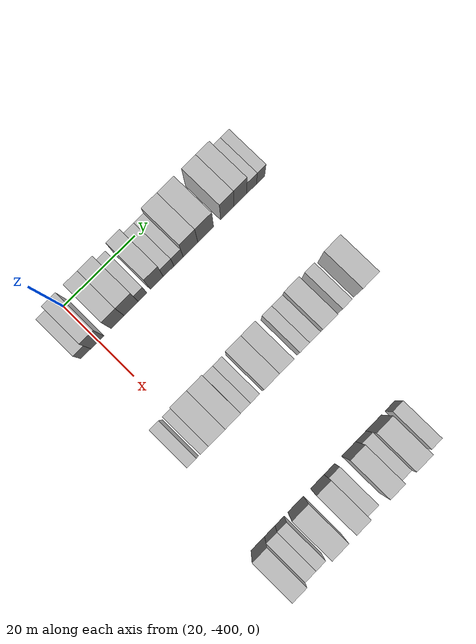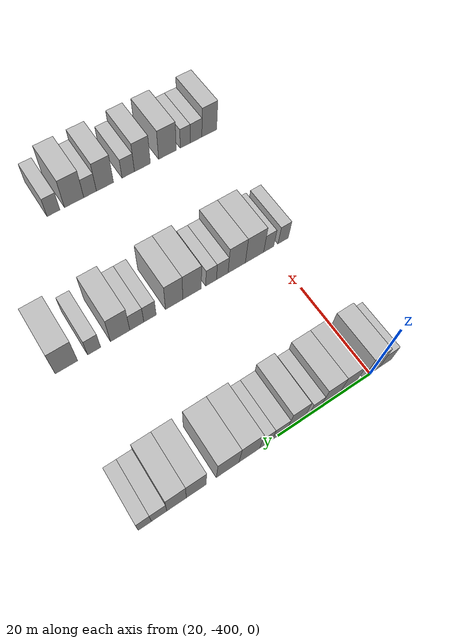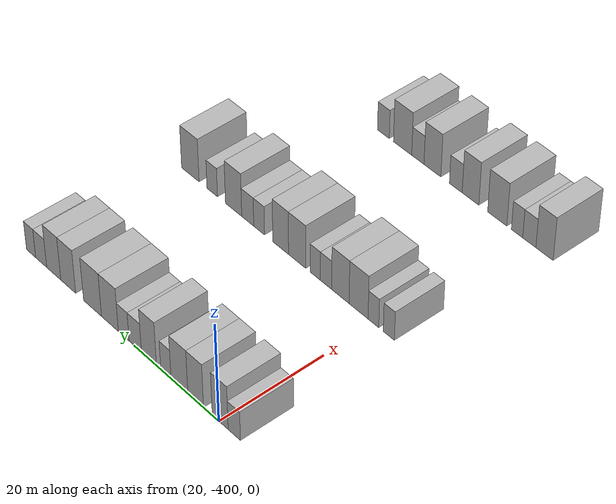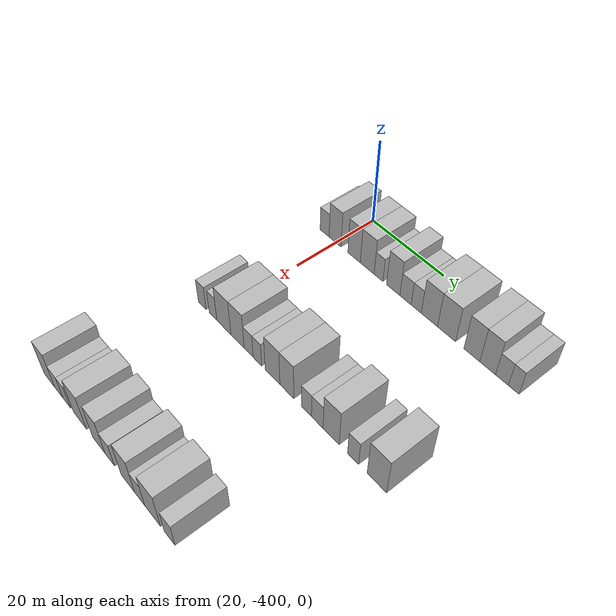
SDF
<sdf version="1.6">
 <world name="default">
  <model name="building_14">
   <static>1</static>
   <pose>25.0000 -403.4761 0 0.000000 0.000000 0.000000</pose>
   <link name="link">
    <pose>0 0 3.00 0 0 0</pose>
    <collision name="collision"><geometry><box><size>10.0000 2.7761 6.0000</size></box></geometry></collision>
    <visual name="visual">
     <cast_shadows>0</cast_shadows>
     <geometry><box><size>10.0000 2.7761 6.0000</size></box></geometry>
     <material>
      <script>
       <uri>model://HANNAS_wall/materials/scripts</uri>
       <uri>model://HANNAS_wall/materials/textures</uri>
       <name>vrc/HANNAS_wall</name>
      </script>
     </material>
    </visual>
   </link>
  </model>
  <model name="building_15">
   <static>1</static>
   <pose>25.0000 -400.2772 0 0.000000 0.000000 0.000000</pose>
   <link name="link">
    <pose>0 0 4.50 0 0 0</pose>
    <collision name="collision"><geometry><box><size>10.0000 3.6216 9.0000</size></box></geometry></collision>
    <visual name="visual">
     <cast_shadows>0</cast_shadows>
     <geometry><box><size>10.0000 3.6216 9.0000</size></box></geometry>
     <material>
      <script>
       <uri>model://HANNAS_wall/materials/scripts</uri>
       <uri>model://HANNAS_wall/materials/textures</uri>
       <name>vrc/HANNAS_wall</name>
      </script>
     </material>
    </visual>
   </link>
  </model>
  <model name="building_16">
   <static>1</static>
   <pose>25.0000 -394.6449 0 0.000000 0.000000 0.000000</pose>
   <link name="link">
    <pose>0 0 4.50 0 0 0</pose>
    <collision name="collision"><geometry><box><size>10.0000 3.6431 9.0000</size></box></geometry></collision>
    <visual name="visual">
     <cast_shadows>0</cast_shadows>
     <geometry><box><size>10.0000 3.6431 9.0000</size></box></geometry>
     <material>
      <script>
       <uri>model://HANNAS_wall/materials/scripts</uri>
       <uri>model://HANNAS_wall/materials/textures</uri>
       <name>vrc/HANNAS_wall</name>
      </script>
     </material>
    </visual>
   </link>
  </model>
  <model name="building_17">
   <static>1</static>
   <pose>25.0000 -390.8557 0 0.000000 0.000000 0.000000</pose>
   <link name="link">
    <pose>0 0 4.50 0 0 0</pose>
    <collision name="collision"><geometry><box><size>10.0000 3.9353 9.0000</size></box></geometry></collision>
    <visual name="visual">
     <cast_shadows>0</cast_shadows>
     <geometry><box><size>10.0000 3.9353 9.0000</size></box></geometry>
     <material>
      <script>
       <uri>model://HANNAS_wall/materials/scripts</uri>
       <uri>model://HANNAS_wall/materials/textures</uri>
       <name>vrc/HANNAS_wall</name>
      </script>
     </material>
    </visual>
   </link>
  </model>
  <model name="building_18">
   <static>1</static>
   <pose>25.0000 -387.6611 0 0.000000 0.000000 0.000000</pose>
   <link name="link">
    <pose>0 0 3.00 0 0 0</pose>
    <collision name="collision"><geometry><box><size>10.0000 2.4538 6.0000</size></box></geometry></collision>
    <visual name="visual">
     <cast_shadows>0</cast_shadows>
     <geometry><box><size>10.0000 2.4538 6.0000</size></box></geometry>
     <material>
      <script>
       <uri>model://HANNAS_wall/materials/scripts</uri>
       <uri>model://HANNAS_wall/materials/textures</uri>
       <name>vrc/HANNAS_wall</name>
      </script>
     </material>
    </visual>
   </link>
  </model>
  <model name="building_19">
   <static>1</static>
   <pose>25.0000 -383.6210 0 0.000000 0.000000 0.000000</pose>
   <link name="link">
    <pose>0 0 4.50 0 0 0</pose>
    <collision name="collision"><geometry><box><size>10.0000 3.6266 9.0000</size></box></geometry></collision>
    <visual name="visual">
     <cast_shadows>0</cast_shadows>
     <geometry><box><size>10.0000 3.6266 9.0000</size></box></geometry>
     <material>
      <script>
       <uri>model://HANNAS_wall/materials/scripts</uri>
       <uri>model://HANNAS_wall/materials/textures</uri>
       <name>vrc/HANNAS_wall</name>
      </script>
     </material>
    </visual>
   </link>
  </model>
  <model name="building_20">
   <static>1</static>
   <pose>25.0000 -380.3133 0 0.000000 0.000000 0.000000</pose>
   <link name="link">
    <pose>0 0 3.00 0 0 0</pose>
    <collision name="collision"><geometry><box><size>10.0000 2.9887 6.0000</size></box></geometry></collision>
    <visual name="visual">
     <cast_shadows>0</cast_shadows>
     <geometry><box><size>10.0000 2.9887 6.0000</size></box></geometry>
     <material>
      <script>
       <uri>model://HANNAS_wall/materials/scripts</uri>
       <uri>model://HANNAS_wall/materials/textures</uri>
       <name>vrc/HANNAS_wall</name>
      </script>
     </material>
    </visual>
   </link>
  </model>
  <model name="building_21">
   <static>1</static>
   <pose>25.0000 -377.5056 0 0.000000 0.000000 0.000000</pose>
   <link name="link">
    <pose>0 0 3.00 0 0 0</pose>
    <collision name="collision"><geometry><box><size>10.0000 2.6268 6.0000</size></box></geometry></collision>
    <visual name="visual">
     <cast_shadows>0</cast_shadows>
     <geometry><box><size>10.0000 2.6268 6.0000</size></box></geometry>
     <material>
      <script>
       <uri>model://HANNAS_wall/materials/scripts</uri>
       <uri>model://HANNAS_wall/materials/textures</uri>
       <name>vrc/HANNAS_wall</name>
      </script>
     </material>
    </visual>
   </link>
  </model>
  <model name="building_22">
   <static>1</static>
   <pose>25.0000 -374.1128 0 0.000000 0.000000 0.000000</pose>
   <link name="link">
    <pose>0 0 4.50 0 0 0</pose>
    <collision name="collision"><geometry><box><size>10.0000 4.1588 9.0000</size></box></geometry></collision>
    <visual name="visual">
     <cast_shadows>0</cast_shadows>
     <geometry><box><size>10.0000 4.1588 9.0000</size></box></geometry>
     <material>
      <script>
       <uri>model://HANNAS_wall/materials/scripts</uri>
       <uri>model://HANNAS_wall/materials/textures</uri>
       <name>vrc/HANNAS_wall</name>
      </script>
     </material>
    </visual>
   </link>
  </model>
  <model name="building_23">
   <static>1</static>
   <pose>25.0000 -369.7850 0 0.000000 0.000000 0.000000</pose>
   <link name="link">
    <pose>0 0 4.50 0 0 0</pose>
    <collision name="collision"><geometry><box><size>10.0000 4.4967 9.0000</size></box></geometry></collision>
    <visual name="visual">
     <cast_shadows>0</cast_shadows>
     <geometry><box><size>10.0000 4.4967 9.0000</size></box></geometry>
     <material>
      <script>
       <uri>model://HANNAS_wall/materials/scripts</uri>
       <uri>model://HANNAS_wall/materials/textures</uri>
       <name>vrc/HANNAS_wall</name>
      </script>
     </material>
    </visual>
   </link>
  </model>
  <model name="building_24">
   <static>1</static>
   <pose>25.0000 -363.6430 0 0.000000 0.000000 0.000000</pose>
   <link name="link">
    <pose>0 0 4.50 0 0 0</pose>
    <collision name="collision"><geometry><box><size>10.0000 3.7874 9.0000</size></box></geometry></collision>
    <visual name="visual">
     <cast_shadows>0</cast_shadows>
     <geometry><box><size>10.0000 3.7874 9.0000</size></box></geometry>
     <material>
      <script>
       <uri>model://HANNAS_wall/materials/scripts</uri>
       <uri>model://HANNAS_wall/materials/textures</uri>
       <name>vrc/HANNAS_wall</name>
      </script>
     </material>
    </visual>
   </link>
  </model>
  <model name="building_25">
   <static>1</static>
   <pose>25.0000 -359.9301 0 0.000000 0.000000 0.000000</pose>
   <link name="link">
    <pose>0 0 4.50 0 0 0</pose>
    <collision name="collision"><geometry><box><size>10.0000 3.6384 9.0000</size></box></geometry></collision>
    <visual name="visual">
     <cast_shadows>0</cast_shadows>
     <geometry><box><size>10.0000 3.6384 9.0000</size></box></geometry>
     <material>
      <script>
       <uri>model://HANNAS_wall/materials/scripts</uri>
       <uri>model://HANNAS_wall/materials/textures</uri>
       <name>vrc/HANNAS_wall</name>
      </script>
     </material>
    </visual>
   </link>
  </model>
  <model name="building_26">
   <static>1</static>
   <pose>25.0000 -356.6710 0 0.000000 0.000000 0.000000</pose>
   <link name="link">
    <pose>0 0 3.00 0 0 0</pose>
    <collision name="collision"><geometry><box><size>10.0000 2.8800 6.0000</size></box></geometry></collision>
    <visual name="visual">
     <cast_shadows>0</cast_shadows>
     <geometry><box><size>10.0000 2.8800 6.0000</size></box></geometry>
     <material>
      <script>
       <uri>model://HANNAS_wall/materials/scripts</uri>
       <uri>model://HANNAS_wall/materials/textures</uri>
       <name>vrc/HANNAS_wall</name>
      </script>
     </material>
    </visual>
   </link>
  </model>
  <model name="building_27">
   <static>1</static>
   <pose>25.0000 -354.0282 0 0.000000 0.000000 0.000000</pose>
   <link name="link">
    <pose>0 0 3.00 0 0 0</pose>
    <collision name="collision"><geometry><box><size>10.0000 2.4056 6.0000</size></box></geometry></collision>
    <visual name="visual">
     <cast_shadows>0</cast_shadows>
     <geometry><box><size>10.0000 2.4056 6.0000</size></box></geometry>
     <material>
      <script>
       <uri>model://HANNAS_wall/materials/scripts</uri>
       <uri>model://HANNAS_wall/materials/textures</uri>
       <name>vrc/HANNAS_wall</name>
      </script>
     </material>
    </visual>
   </link>
  </model>
  <model name="building_235">
   <static>1</static>
   <pose>55.0000 -403.2825 0 0.000000 0.000000 0.000000</pose>
   <link name="link">
    <pose>0 0 3.00 0 0 0</pose>
    <collision name="collision"><geometry><box><size>10.0000 2.4822 6.0000</size></box></geometry></collision>
    <visual name="visual">
     <cast_shadows>0</cast_shadows>
     <geometry><box><size>10.0000 2.4822 6.0000</size></box></geometry>
     <material>
      <script>
       <uri>model://HANNAS_wall/materials/scripts</uri>
       <uri>model://HANNAS_wall/materials/textures</uri>
       <name>vrc/HANNAS_wall</name>
      </script>
     </material>
    </visual>
   </link>
  </model>
  <model name="building_236">
   <static>1</static>
   <pose>55.0000 -399.8390 0 0.000000 0.000000 0.000000</pose>
   <link name="link">
    <pose>0 0 3.00 0 0 0</pose>
    <collision name="collision"><geometry><box><size>10.0000 2.4047 6.0000</size></box></geometry></collision>
    <visual name="visual">
     <cast_shadows>0</cast_shadows>
     <geometry><box><size>10.0000 2.4047 6.0000</size></box></geometry>
     <material>
      <script>
       <uri>model://HANNAS_wall/materials/scripts</uri>
       <uri>model://HANNAS_wall/materials/textures</uri>
       <name>vrc/HANNAS_wall</name>
      </script>
     </material>
    </visual>
   </link>
  </model>
  <model name="building_237">
   <static>1</static>
   <pose>55.0000 -396.4767 0 0.000000 0.000000 0.000000</pose>
   <link name="link">
    <pose>0 0 4.50 0 0 0</pose>
    <collision name="collision"><geometry><box><size>10.0000 4.3198 9.0000</size></box></geometry></collision>
    <visual name="visual">
     <cast_shadows>0</cast_shadows>
     <geometry><box><size>10.0000 4.3198 9.0000</size></box></geometry>
     <material>
      <script>
       <uri>model://HANNAS_wall/materials/scripts</uri>
       <uri>model://HANNAS_wall/materials/textures</uri>
       <name>vrc/HANNAS_wall</name>
      </script>
     </material>
    </visual>
   </link>
  </model>
  <model name="building_238">
   <static>1</static>
   <pose>55.0000 -392.3198 0 0.000000 0.000000 0.000000</pose>
   <link name="link">
    <pose>0 0 4.50 0 0 0</pose>
    <collision name="collision"><geometry><box><size>10.0000 3.9941 9.0000</size></box></geometry></collision>
    <visual name="visual">
     <cast_shadows>0</cast_shadows>
     <geometry><box><size>10.0000 3.9941 9.0000</size></box></geometry>
     <material>
      <script>
       <uri>model://HANNAS_wall/materials/scripts</uri>
       <uri>model://HANNAS_wall/materials/textures</uri>
       <name>vrc/HANNAS_wall</name>
      </script>
     </material>
    </visual>
   </link>
  </model>
  <model name="building_239">
   <static>1</static>
   <pose>55.0000 -389.0053 0 0.000000 0.000000 0.000000</pose>
   <link name="link">
    <pose>0 0 3.00 0 0 0</pose>
    <collision name="collision"><geometry><box><size>10.0000 2.6348 6.0000</size></box></geometry></collision>
    <visual name="visual">
     <cast_shadows>0</cast_shadows>
     <geometry><box><size>10.0000 2.6348 6.0000</size></box></geometry>
     <material>
      <script>
       <uri>model://HANNAS_wall/materials/scripts</uri>
       <uri>model://HANNAS_wall/materials/textures</uri>
       <name>vrc/HANNAS_wall</name>
      </script>
     </material>
    </visual>
   </link>
  </model>
  <model name="building_240">
   <static>1</static>
   <pose>55.0000 -386.4755 0 0.000000 0.000000 0.000000</pose>
   <link name="link">
    <pose>0 0 3.00 0 0 0</pose>
    <collision name="collision"><geometry><box><size>10.0000 2.4249 6.0000</size></box></geometry></collision>
    <visual name="visual">
     <cast_shadows>0</cast_shadows>
     <geometry><box><size>10.0000 2.4249 6.0000</size></box></geometry>
     <material>
      <script>
       <uri>model://HANNAS_wall/materials/scripts</uri>
       <uri>model://HANNAS_wall/materials/textures</uri>
       <name>vrc/HANNAS_wall</name>
      </script>
     </material>
    </visual>
   </link>
  </model>
  <model name="building_241">
   <static>1</static>
   <pose>55.0000 -382.2234 0 0.000000 0.000000 0.000000</pose>
   <link name="link">
    <pose>0 0 4.50 0 0 0</pose>
    <collision name="collision"><geometry><box><size>10.0000 4.0792 9.0000</size></box></geometry></collision>
    <visual name="visual">
     <cast_shadows>0</cast_shadows>
     <geometry><box><size>10.0000 4.0792 9.0000</size></box></geometry>
     <material>
      <script>
       <uri>model://HANNAS_wall/materials/scripts</uri>
       <uri>model://HANNAS_wall/materials/textures</uri>
       <name>vrc/HANNAS_wall</name>
      </script>
     </material>
    </visual>
   </link>
  </model>
  <model name="building_242">
   <static>1</static>
   <pose>55.0000 -378.2916 0 0.000000 0.000000 0.000000</pose>
   <link name="link">
    <pose>0 0 4.50 0 0 0</pose>
    <collision name="collision"><geometry><box><size>10.0000 3.7845 9.0000</size></box></geometry></collision>
    <visual name="visual">
     <cast_shadows>0</cast_shadows>
     <geometry><box><size>10.0000 3.7845 9.0000</size></box></geometry>
     <material>
      <script>
       <uri>model://HANNAS_wall/materials/scripts</uri>
       <uri>model://HANNAS_wall/materials/textures</uri>
       <name>vrc/HANNAS_wall</name>
      </script>
     </material>
    </visual>
   </link>
  </model>
  <model name="building_243">
   <static>1</static>
   <pose>55.0000 -373.0830 0 0.000000 0.000000 0.000000</pose>
   <link name="link">
    <pose>0 0 3.00 0 0 0</pose>
    <collision name="collision"><geometry><box><size>10.0000 2.6327 6.0000</size></box></geometry></collision>
    <visual name="visual">
     <cast_shadows>0</cast_shadows>
     <geometry><box><size>10.0000 2.6327 6.0000</size></box></geometry>
     <material>
      <script>
       <uri>model://HANNAS_wall/materials/scripts</uri>
       <uri>model://HANNAS_wall/materials/textures</uri>
       <name>vrc/HANNAS_wall</name>
      </script>
     </material>
    </visual>
   </link>
  </model>
  <model name="building_244">
   <static>1</static>
   <pose>55.0000 -370.2900 0 0.000000 0.000000 0.000000</pose>
   <link name="link">
    <pose>0 0 3.00 0 0 0</pose>
    <collision name="collision"><geometry><box><size>10.0000 2.9532 6.0000</size></box></geometry></collision>
    <visual name="visual">
     <cast_shadows>0</cast_shadows>
     <geometry><box><size>10.0000 2.9532 6.0000</size></box></geometry>
     <material>
      <script>
       <uri>model://HANNAS_wall/materials/scripts</uri>
       <uri>model://HANNAS_wall/materials/textures</uri>
       <name>vrc/HANNAS_wall</name>
      </script>
     </material>
    </visual>
   </link>
  </model>
  <model name="building_245">
   <static>1</static>
   <pose>55.0000 -366.8030 0 0.000000 0.000000 0.000000</pose>
   <link name="link">
    <pose>0 0 4.50 0 0 0</pose>
    <collision name="collision"><geometry><box><size>10.0000 4.0210 9.0000</size></box></geometry></collision>
    <visual name="visual">
     <cast_shadows>0</cast_shadows>
     <geometry><box><size>10.0000 4.0210 9.0000</size></box></geometry>
     <material>
      <script>
       <uri>model://HANNAS_wall/materials/scripts</uri>
       <uri>model://HANNAS_wall/materials/textures</uri>
       <name>vrc/HANNAS_wall</name>
      </script>
     </material>
    </visual>
   </link>
  </model>
  <model name="building_246">
   <static>1</static>
   <pose>55.0000 -361.4642 0 0.000000 0.000000 0.000000</pose>
   <link name="link">
    <pose>0 0 3.00 0 0 0</pose>
    <collision name="collision"><geometry><box><size>10.0000 2.6565 6.0000</size></box></geometry></collision>
    <visual name="visual">
     <cast_shadows>0</cast_shadows>
     <geometry><box><size>10.0000 2.6565 6.0000</size></box></geometry>
     <material>
      <script>
       <uri>model://HANNAS_wall/materials/scripts</uri>
       <uri>model://HANNAS_wall/materials/textures</uri>
       <name>vrc/HANNAS_wall</name>
      </script>
     </material>
    </visual>
   </link>
  </model>
  <model name="building_247">
   <static>1</static>
   <pose>55.0000 -355.9044 0 0.000000 0.000000 0.000000</pose>
   <link name="link">
    <pose>0 0 4.50 0 0 0</pose>
    <collision name="collision"><geometry><box><size>10.0000 4.4631 9.0000</size></box></geometry></collision>
    <visual name="visual">
     <cast_shadows>0</cast_shadows>
     <geometry><box><size>10.0000 4.4631 9.0000</size></box></geometry>
     <material>
      <script>
       <uri>model://HANNAS_wall/materials/scripts</uri>
       <uri>model://HANNAS_wall/materials/textures</uri>
       <name>vrc/HANNAS_wall</name>
      </script>
     </material>
    </visual>
   </link>
  </model>
  <model name="building_451">
   <static>1</static>
   <pose>85.0000 -405.9552 0 0.000000 0.000000 0.000000</pose>
   <link name="link">
    <pose>0 0 4.50 0 0 0</pose>
    <collision name="collision"><geometry><box><size>10.0000 3.7818 9.0000</size></box></geometry></collision>
    <visual name="visual">
     <cast_shadows>0</cast_shadows>
     <geometry><box><size>10.0000 3.7818 9.0000</size></box></geometry>
     <material>
      <script>
       <uri>model://HANNAS_wall/materials/scripts</uri>
       <uri>model://HANNAS_wall/materials/textures</uri>
       <name>vrc/HANNAS_wall</name>
      </script>
     </material>
    </visual>
   </link>
  </model>
  <model name="building_452">
   <static>1</static>
   <pose>85.0000 -402.6090 0 0.000000 0.000000 0.000000</pose>
   <link name="link">
    <pose>0 0 3.00 0 0 0</pose>
    <collision name="collision"><geometry><box><size>10.0000 2.9107 6.0000</size></box></geometry></collision>
    <visual name="visual">
     <cast_shadows>0</cast_shadows>
     <geometry><box><size>10.0000 2.9107 6.0000</size></box></geometry>
     <material>
      <script>
       <uri>model://HANNAS_wall/materials/scripts</uri>
       <uri>model://HANNAS_wall/materials/textures</uri>
       <name>vrc/HANNAS_wall</name>
      </script>
     </material>
    </visual>
   </link>
  </model>
  <model name="building_453">
   <static>1</static>
   <pose>85.0000 -399.8909 0 0.000000 0.000000 0.000000</pose>
   <link name="link">
    <pose>0 0 3.00 0 0 0</pose>
    <collision name="collision"><geometry><box><size>10.0000 2.5256 6.0000</size></box></geometry></collision>
    <visual name="visual">
     <cast_shadows>0</cast_shadows>
     <geometry><box><size>10.0000 2.5256 6.0000</size></box></geometry>
     <material>
      <script>
       <uri>model://HANNAS_wall/materials/scripts</uri>
       <uri>model://HANNAS_wall/materials/textures</uri>
       <name>vrc/HANNAS_wall</name>
      </script>
     </material>
    </visual>
   </link>
  </model>
  <model name="building_454">
   <static>1</static>
   <pose>85.0000 -395.4557 0 0.000000 0.000000 0.000000</pose>
   <link name="link">
    <pose>0 0 4.50 0 0 0</pose>
    <collision name="collision"><geometry><box><size>10.0000 4.3448 9.0000</size></box></geometry></collision>
    <visual name="visual">
     <cast_shadows>0</cast_shadows>
     <geometry><box><size>10.0000 4.3448 9.0000</size></box></geometry>
     <material>
      <script>
       <uri>model://HANNAS_wall/materials/scripts</uri>
       <uri>model://HANNAS_wall/materials/textures</uri>
       <name>vrc/HANNAS_wall</name>
      </script>
     </material>
    </visual>
   </link>
  </model>
  <model name="building_455">
   <static>1</static>
   <pose>85.0000 -389.3639 0 0.000000 0.000000 0.000000</pose>
   <link name="link">
    <pose>0 0 4.50 0 0 0</pose>
    <collision name="collision"><geometry><box><size>10.0000 3.8388 9.0000</size></box></geometry></collision>
    <visual name="visual">
     <cast_shadows>0</cast_shadows>
     <geometry><box><size>10.0000 3.8388 9.0000</size></box></geometry>
     <material>
      <script>
       <uri>model://HANNAS_wall/materials/scripts</uri>
       <uri>model://HANNAS_wall/materials/textures</uri>
       <name>vrc/HANNAS_wall</name>
      </script>
     </material>
    </visual>
   </link>
  </model>
  <model name="building_456">
   <static>1</static>
   <pose>85.0000 -385.9660 0 0.000000 0.000000 0.000000</pose>
   <link name="link">
    <pose>0 0 3.00 0 0 0</pose>
    <collision name="collision"><geometry><box><size>10.0000 2.9570 6.0000</size></box></geometry></collision>
    <visual name="visual">
     <cast_shadows>0</cast_shadows>
     <geometry><box><size>10.0000 2.9570 6.0000</size></box></geometry>
     <material>
      <script>
       <uri>model://HANNAS_wall/materials/scripts</uri>
       <uri>model://HANNAS_wall/materials/textures</uri>
       <name>vrc/HANNAS_wall</name>
      </script>
     </material>
    </visual>
   </link>
  </model>
  <model name="building_457">
   <static>1</static>
   <pose>85.0000 -380.4995 0 0.000000 0.000000 0.000000</pose>
   <link name="link">
    <pose>0 0 4.50 0 0 0</pose>
    <collision name="collision"><geometry><box><size>10.0000 3.9760 9.0000</size></box></geometry></collision>
    <visual name="visual">
     <cast_shadows>0</cast_shadows>
     <geometry><box><size>10.0000 3.9760 9.0000</size></box></geometry>
     <material>
      <script>
       <uri>model://HANNAS_wall/materials/scripts</uri>
       <uri>model://HANNAS_wall/materials/textures</uri>
       <name>vrc/HANNAS_wall</name>
      </script>
     </material>
    </visual>
   </link>
  </model>
  <model name="building_458">
   <static>1</static>
   <pose>85.0000 -377.0523 0 0.000000 0.000000 0.000000</pose>
   <link name="link">
    <pose>0 0 3.00 0 0 0</pose>
    <collision name="collision"><geometry><box><size>10.0000 2.9183 6.0000</size></box></geometry></collision>
    <visual name="visual">
     <cast_shadows>0</cast_shadows>
     <geometry><box><size>10.0000 2.9183 6.0000</size></box></geometry>
     <material>
      <script>
       <uri>model://HANNAS_wall/materials/scripts</uri>
       <uri>model://HANNAS_wall/materials/textures</uri>
       <name>vrc/HANNAS_wall</name>
      </script>
     </material>
    </visual>
   </link>
  </model>
  <model name="building_459">
   <static>1</static>
   <pose>85.0000 -373.4003 0 0.000000 0.000000 0.000000</pose>
   <link name="link">
    <pose>0 0 4.50 0 0 0</pose>
    <collision name="collision"><geometry><box><size>10.0000 4.3857 9.0000</size></box></geometry></collision>
    <visual name="visual">
     <cast_shadows>0</cast_shadows>
     <geometry><box><size>10.0000 4.3857 9.0000</size></box></geometry>
     <material>
      <script>
       <uri>model://HANNAS_wall/materials/scripts</uri>
       <uri>model://HANNAS_wall/materials/textures</uri>
       <name>vrc/HANNAS_wall</name>
      </script>
     </material>
    </visual>
   </link>
  </model>
  <model name="building_460">
   <static>1</static>
   <pose>85.0000 -368.7681 0 0.000000 0.000000 0.000000</pose>
   <link name="link">
    <pose>0 0 3.00 0 0 0</pose>
    <collision name="collision"><geometry><box><size>10.0000 2.8788 6.0000</size></box></geometry></collision>
    <visual name="visual">
     <cast_shadows>0</cast_shadows>
     <geometry><box><size>10.0000 2.8788 6.0000</size></box></geometry>
     <material>
      <script>
       <uri>model://HANNAS_wall/materials/scripts</uri>
       <uri>model://HANNAS_wall/materials/textures</uri>
       <name>vrc/HANNAS_wall</name>
      </script>
     </material>
    </visual>
   </link>
  </model>
 </world>
</sdf>
